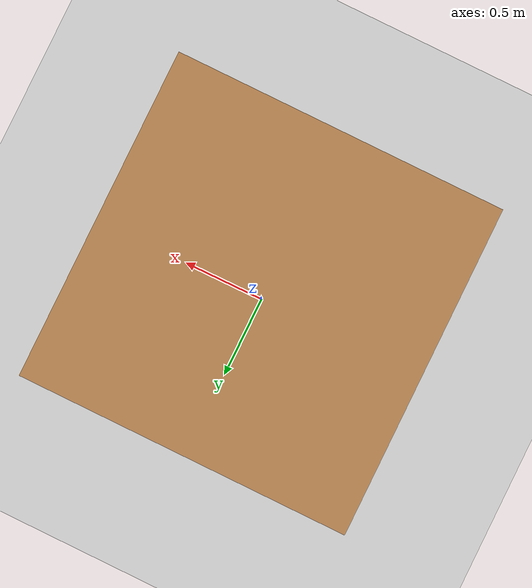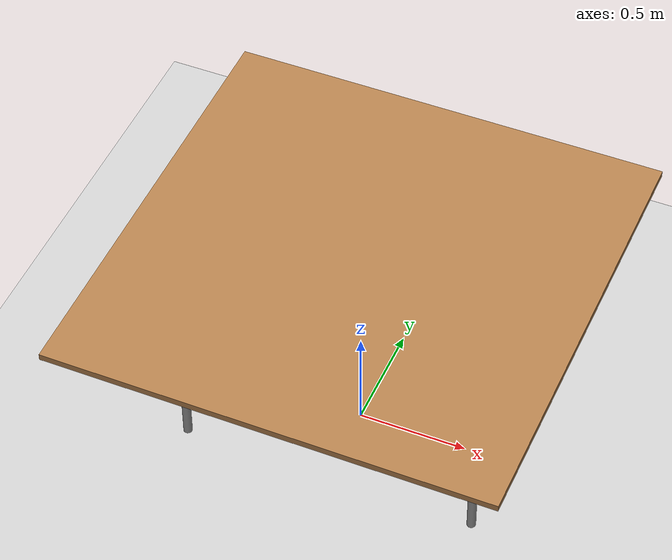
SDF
<sdf version='1.6'>
  <world name='default'>
    <light name='sun' type='directional'>
      <cast_shadows>1</cast_shadows>
      <pose frame=''>0 0 10 0 -0 0</pose>
      <diffuse>0.8 0.8 0.8 1</diffuse>
      <specular>0.1 0.1 0.1 1</specular>
      <attenuation>
        <range>1000</range>
        <constant>0.9</constant>
        <linear>0.01</linear>
        <quadratic>0.001</quadratic>
      </attenuation>
      <direction>-0.5 0.5 -1</direction>
    </light>
    <model name='ground_plane'>
      <static>1</static>
      <link name='link'>
        <collision name='collision'>
          <geometry>
            <plane>
              <normal>0 0 1</normal>
              <size>100 100</size>
            </plane>
          </geometry>
          <surface>
            <friction>
              <ode>
                <mu>100</mu>
                <mu2>50</mu2>
              </ode>
              <torsional>
                <ode/>
              </torsional>
            </friction>
            <contact>
              <ode/>
            </contact>
            <bounce/>
          </surface>
          <max_contacts>10</max_contacts>
        </collision>
        <visual name='visual'>
          <cast_shadows>0</cast_shadows>
          <geometry>
            <plane>
              <normal>0 0 1</normal>
              <size>100 100</size>
            </plane>
          </geometry>
          <material>
            <script>
              <uri>file://media/materials/scripts/gazebo.material</uri>
              <name>Gazebo/Grey</name>
            </script>
          </material>
        </visual>
        <self_collide>0</self_collide>
        <kinematic>0</kinematic>
        <gravity>1</gravity>
      </link>
    </model>
    <gravity>0 0 -9.8</gravity>
    <magnetic_field>6e-06 2.3e-05 -4.2e-05</magnetic_field>
    <atmosphere type='adiabatic'/>
    <physics name='default_physics' default='0' type='ode'>
      <max_step_size>0.0005</max_step_size>
      <real_time_factor>1</real_time_factor>
      <real_time_update_rate>1000</real_time_update_rate>
      <ode>
        <solver>
          <iters>100</iters>
        </solver>
      </ode>
    </physics>
    <scene>
      <ambient>0.4 0.4 0.4 1</ambient>
      <background>0.7 0.7 0.7 1</background>
      <shadows>1</shadows>
    </scene>
    <spherical_coordinates>
      <surface_model>EARTH_WGS84</surface_model>
      <latitude_deg>0</latitude_deg>
      <longitude_deg>0</longitude_deg>
      <elevation>0</elevation>
      <heading_deg>0</heading_deg>
    </spherical_coordinates>
    <model name='table'>
      <static>1</static>
      <link name='link'>
        <collision name='surface'>
          <pose frame=''>0 0 1 0 -0 0</pose>
          <geometry>
            <box>
              <size>2 2 0.03</size>
            </box>
          </geometry>
          <surface>
            <friction>
              <ode>
                <mu>100</mu>
                <mu2>100</mu2>
              </ode>
              <torsional>
                <ode/>
              </torsional>
            </friction>
            <contact>
              <ode/>
            </contact>
            <bounce/>
          </surface>
          <max_contacts>10</max_contacts>
        </collision>
        <visual name='visual1'>
          <pose frame=''>0 0 1 0 -0 0</pose>
          <geometry>
            <box>
              <size>2 2 0.03</size>
            </box>
          </geometry>
          <material>
            <script>
              <uri>file://media/materials/scripts/gazebo.material</uri>
              <name>Gazebo/Wood</name>
            </script>
          </material>
        </visual>
        <collision name='front_left_leg'>
          <pose frame=''>0.68 0.38 0.5 0 -0 0</pose>
          <geometry>
            <cylinder>
              <radius>0.02</radius>
              <length>1</length>
            </cylinder>
          </geometry>
          <max_contacts>10</max_contacts>
          <surface>
            <contact>
              <ode/>
            </contact>
            <bounce/>
            <friction>
              <torsional>
                <ode/>
              </torsional>
              <ode/>
            </friction>
          </surface>
        </collision>
        <visual name='front_left_leg'>
          <pose frame=''>0.68 0.38 0.5 0 -0 0</pose>
          <geometry>
            <cylinder>
              <radius>0.02</radius>
              <length>1</length>
            </cylinder>
          </geometry>
          <material>
            <script>
              <uri>file://media/materials/scripts/gazebo.material</uri>
              <name>Gazebo/Grey</name>
            </script>
          </material>
        </visual>
        <collision name='front_right_leg'>
          <pose frame=''>0.68 -0.38 0.5 0 -0 0</pose>
          <geometry>
            <cylinder>
              <radius>0.02</radius>
              <length>1</length>
            </cylinder>
          </geometry>
          <max_contacts>10</max_contacts>
          <surface>
            <contact>
              <ode/>
            </contact>
            <bounce/>
            <friction>
              <torsional>
                <ode/>
              </torsional>
              <ode/>
            </friction>
          </surface>
        </collision>
        <visual name='front_right_leg'>
          <pose frame=''>0.68 -0.38 0.5 0 -0 0</pose>
          <geometry>
            <cylinder>
              <radius>0.02</radius>
              <length>1</length>
            </cylinder>
          </geometry>
          <material>
            <script>
              <uri>file://media/materials/scripts/gazebo.material</uri>
              <name>Gazebo/Grey</name>
            </script>
          </material>
        </visual>
        <collision name='back_right_leg'>
          <pose frame=''>-0.68 -0.38 0.5 0 -0 0</pose>
          <geometry>
            <cylinder>
              <radius>0.02</radius>
              <length>1</length>
            </cylinder>
          </geometry>
          <max_contacts>10</max_contacts>
          <surface>
            <contact>
              <ode/>
            </contact>
            <bounce/>
            <friction>
              <torsional>
                <ode/>
              </torsional>
              <ode/>
            </friction>
          </surface>
        </collision>
        <visual name='back_right_leg'>
          <pose frame=''>-0.68 -0.38 0.5 0 -0 0</pose>
          <geometry>
            <cylinder>
              <radius>0.02</radius>
              <length>1</length>
            </cylinder>
          </geometry>
          <material>
            <script>
              <uri>file://media/materials/scripts/gazebo.material</uri>
              <name>Gazebo/Grey</name>
            </script>
          </material>
        </visual>
        <collision name='back_left_leg'>
          <pose frame=''>-0.68 0.38 0.5 0 -0 0</pose>
          <geometry>
            <cylinder>
              <radius>0.02</radius>
              <length>1</length>
            </cylinder>
          </geometry>
          <max_contacts>10</max_contacts>
          <surface>
            <contact>
              <ode/>
            </contact>
            <bounce/>
            <friction>
              <torsional>
                <ode/>
              </torsional>
              <ode/>
            </friction>
          </surface>
        </collision>
        <visual name='back_left_leg'>
          <pose frame=''>-0.68 0.38 0.5 0 -0 0</pose>
          <geometry>
            <cylinder>
              <radius>0.02</radius>
              <length>1</length>
            </cylinder>
          </geometry>
          <material>
            <script>
              <uri>file://media/materials/scripts/gazebo.material</uri>
              <name>Gazebo/Grey</name>
            </script>
          </material>
        </visual>
        <self_collide>0</self_collide>
        <inertial>
          <inertia>
            <ixx>1</ixx>
            <ixy>0</ixy>
            <ixz>0</ixz>
            <iyy>1</iyy>
            <iyz>0</iyz>
            <izz>1</izz>
          </inertia>
          <mass>1</mass>
        </inertial>
        <kinematic>0</kinematic>
        <gravity>1</gravity>
      </link>
      <pose frame=''>0 0 0 0 -0 0</pose>
    </model>

    <gui fullscreen='0'>
      <camera name='user_camera'>
        <pose frame=''>2.73099 -1.19131 2.41562 0 0.595084 2.49911</pose>
        <view_controller>orbit</view_controller>
        <projection_type>perspective</projection_type>
      </camera>
    </gui>
  </world>
</sdf>
